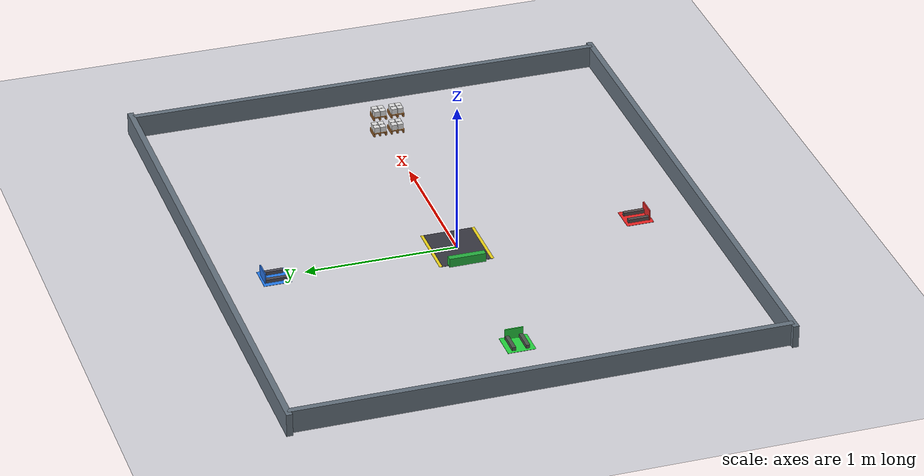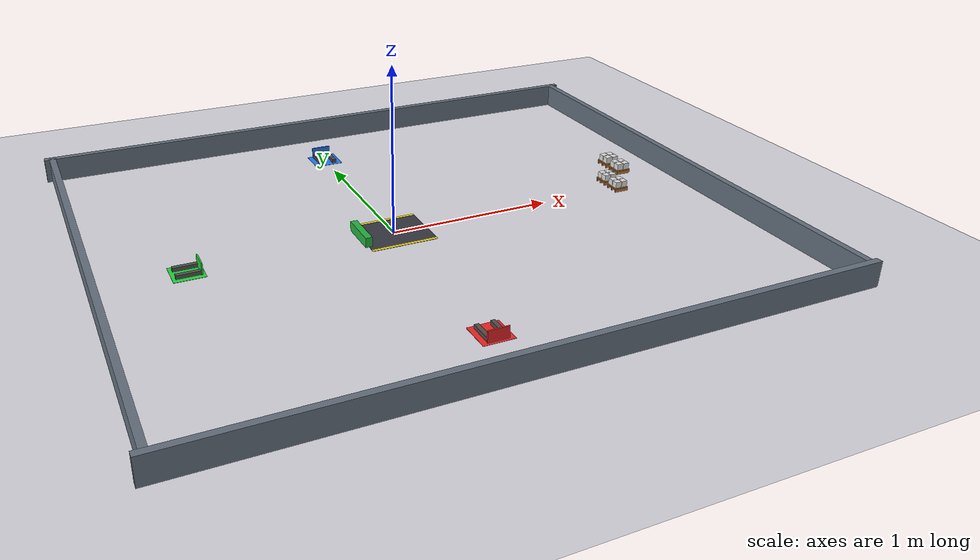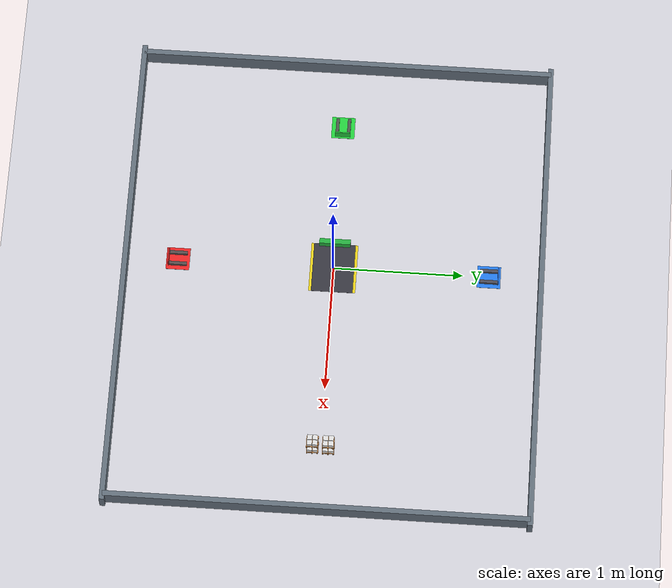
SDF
<sdf version="1.8">
 <world name="default">
  <physics name="1ms" type="ignored">
   <max_step_size>0.001</max_step_size>
   <real_time_factor>1.0</real_time_factor>
  </physics>
  <plugin filename="ignition-gazebo-physics-system" name="ignition::gazebo::systems::Physics"/>
  <plugin filename="ignition-gazebo-user-commands-system" name="ignition::gazebo::systems::UserCommands"/>
  <plugin filename="ignition-gazebo-scene-broadcaster-system" name="ignition::gazebo::systems::SceneBroadcaster"/>
  <plugin filename="ignition-gazebo-contact-system" name="ignition::gazebo::systems::Contact"/>
  <plugin filename="ignition-gazebo-sensors-system" name="ignition::gazebo::systems::Sensors">
   <render_engine>ogre2</render_engine>
  </plugin>
  <light type="directional" name="sun">
   <cast_shadows>false</cast_shadows>
   <pose>0 0 10 0 0 0</pose>
   <diffuse>0.9 0.9 0.9 1</diffuse>
   <specular>0.2 0.2 0.2 1</specular>
   <attenuation>
    <range>1000</range>
    <constant>0.9</constant>
    <linear>0.01</linear>
    <quadratic>0.001</quadratic>
   </attenuation>
   <direction>-0.5 0.1 -0.9</direction>
  </light>
  <model name="ground_plane">
   <static>true</static>
   <link name="link">
    <collision name="collision">
     <geometry><plane><normal>0 0 1</normal><size>100 100</size></plane></geometry>
     <surface><friction><ode><mu>1.0</mu><mu2>1.0</mu2></ode></friction></surface>
    </collision>
    <visual name="visual">
     <geometry><plane><normal>0 0 1</normal><size>100 100</size></plane></geometry>
     <material>
      <ambient>0.82 0.82 0.85 1</ambient>
      <diffuse>0.85 0.85 0.88 1</diffuse>
      <specular>0.5 0.5 0.5 1</specular>
     </material>
    </visual>
   </link>
  </model>
  <model name="arena_perimeter">
   <static>true</static>
   <link name="link">
    <visual name="wall_north_vis">
     <pose>0.15 1.6 0.075 0 0 0</pose>
     <geometry><box><size>3.8 0.04 0.15</size></box></geometry>
     <material><ambient>0.3 0.35 0.4 1</ambient><diffuse>0.4 0.45 0.5 1</diffuse></material>
    </visual>
    <collision name="wall_north_col">
     <pose>0.15 1.6 0.075 0 0 0</pose>
     <geometry><box><size>3.8 0.04 0.15</size></box></geometry>
    </collision>
    <visual name="wall_south_vis">
     <pose>0.15 -1.6 0.075 0 0 0</pose>
     <geometry><box><size>3.8 0.04 0.15</size></box></geometry>
     <material><ambient>0.3 0.35 0.4 1</ambient><diffuse>0.4 0.45 0.5 1</diffuse></material>
    </visual>
    <collision name="wall_south_col">
     <pose>0.15 -1.6 0.075 0 0 0</pose>
     <geometry><box><size>3.8 0.04 0.15</size></box></geometry>
    </collision>
    <visual name="wall_east_vis">
     <pose>2.0 0 0.075 0 0 0</pose>
     <geometry><box><size>0.04 3.2 0.15</size></box></geometry>
     <material><ambient>0.3 0.35 0.4 1</ambient><diffuse>0.4 0.45 0.5 1</diffuse></material>
    </visual>
    <collision name="wall_east_col">
     <pose>2.0 0 0.075 0 0 0</pose>
     <geometry><box><size>0.04 3.2 0.15</size></box></geometry>
    </collision>
    <visual name="wall_west_vis">
     <pose>-1.7 0 0.075 0 0 0</pose>
     <geometry><box><size>0.04 3.2 0.15</size></box></geometry>
     <material><ambient>0.3 0.35 0.4 1</ambient><diffuse>0.4 0.45 0.5 1</diffuse></material>
    </visual>
    <collision name="wall_west_col">
     <pose>-1.7 0 0.075 0 0 0</pose>
     <geometry><box><size>0.04 3.2 0.15</size></box></geometry>
    </collision>
   </link>
  </model>
  <include><uri>model://docking_station</uri><name>docking_home</name><pose>0.0 0.0 0.001 0 0 0</pose></include>
  <include>
   <uri>model://pallet_cpu</uri>
   <name>pallet_cpu_bottom_left</name>
   <pose>1.5 -0.060 0.0285 0 0 1.5708</pose>
  </include>
  <include>
   <uri>model://pallet_aluminum</uri>
   <name>pallet_al_bottom_right</name>
   <pose>1.5 0.060 0.0285 0 0 1.5708</pose>
  </include>
  <include>
   <uri>model://pallet_chip</uri>
   <name>pallet_chip_top_left</name>
   <pose>1.5 -0.060 0.1485 0 0 1.5708</pose>
  </include>
  <include>
   <uri>model://pallet_qr</uri>
   <name>pallet_qr_top_right</name>
   <pose>1.5 0.060 0.1485 0 0 1.5708</pose>
  </include>
  <include>
   <uri>model://dropoff_station_blue</uri>
   <name>dropoff_blue</name>
   <pose>0.0 1.2 0.0025 0 0 0.0</pose>
  </include>
  <include>
   <uri>model://dropoff_station_red</uri>
   <name>dropoff_red</name>
   <pose>0.0 -1.2 0.0025 0 0 3.14159265</pose>
  </include>
  <include>
   <uri>model://dropoff_station_green</uri>
   <name>dropoff_green</name>
   <pose>-1.2 0.0 0.0025 0 0 -1.5707963</pose>
  </include>
 </world>
</sdf>

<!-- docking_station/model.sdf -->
<sdf version="1.8">
  <model name="docking_station">
    <static>true</static>
    <link name="link">
      <!-- Main Docking Pad Surface -->
      <visual name="visual_pad">
        <pose>0 0 0.001 0 0 0</pose>
        <geometry>
          <box>
            <size>0.40 0.36 0.002</size>
          </box>
        </geometry>
        <material>
          <ambient>0.15 0.15 0.18 1.0</ambient>
          <diffuse>0.22 0.22 0.26 1.0</diffuse>
          <specular>0.3 0.3 0.3 1.0</specular>
        </material>
      </visual>

      <!-- Yellow/Amber Boundary Strip Left -->
      <visual name="visual_border_left">
        <pose>0 -0.17 0.0015 0 0 0</pose>
        <geometry>
          <box>
            <size>0.40 0.02 0.002</size>
          </box>
        </geometry>
        <material>
          <ambient>0.8 0.7 0.1 1.0</ambient>
          <diffuse>0.95 0.85 0.1 1.0</diffuse>
        </material>
      </visual>

      <!-- Yellow/Amber Boundary Strip Right -->
      <visual name="visual_border_right">
        <pose>0 0.17 0.0015 0 0 0</pose>
        <geometry>
          <box>
            <size>0.40 0.02 0.002</size>
          </box>
        </geometry>
        <material>
          <ambient>0.8 0.7 0.1 1.0</ambient>
          <diffuse>0.95 0.85 0.1 1.0</diffuse>
        </material>
      </visual>

      <!-- Rear Docking Contact Stand -->
      <visual name="visual_dock_back">
        <pose>-0.20 0 0.03 0 0 0</pose>
        <geometry>
          <box>
            <size>0.04 0.24 0.06</size>
          </box>
        </geometry>
        <material>
          <ambient>0.1 0.5 0.2 1.0</ambient>
          <diffuse>0.15 0.7 0.25 1.0</diffuse>
        </material>
      </visual>
      <collision name="collision_dock_back">
        <pose>-0.20 0 0.03 0 0 0</pose>
        <geometry>
          <box>
            <size>0.04 0.24 0.06</size>
          </box>
        </geometry>
      </collision>
    </link>
  </model>
</sdf>

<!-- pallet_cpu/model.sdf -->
<sdf version="1.8">
  <model name="pallet_cpu">
    <static>false</static>
    <link name="link">
      <inertial>
        <mass>0.25</mass>
        <inertia>
          <ixx>0.0003</ixx>
          <ixy>0</ixy>
          <ixz>0</ixz>
          <iyy>0.0003</iyy>
          <iyz>0</iyz>
          <izz>0.0004</izz>
        </inertia>
      </inertial>

      <!-- ==================== PALLET STRUCTURE (PRIMITIVE BOXES) ==================== -->
      <!-- Pallet Top Deck Visual -->
      <visual name="visual_deck">
        <pose>0 0 0.023 0 0 0</pose>
        <geometry>
          <box>
            <size>0.09 0.09 0.006</size>
          </box>
        </geometry>
        <material>
          <ambient>0.75 0.5 0.25 1.0</ambient>
          <diffuse>0.82 0.55 0.28 1.0</diffuse>
          <specular>0.1 0.1 0.1 1.0</specular>
        </material>
      </visual>

      <!-- Pallet Foot 1 (Left Runner: 10mm width) -->
      <visual name="visual_foot_1">
        <pose>-0.040 0 0.010 0 0 0</pose>
        <geometry>
          <box>
            <size>0.010 0.09 0.020</size>
          </box>
        </geometry>
        <material>
          <ambient>0.65 0.42 0.20 1.0</ambient>
          <diffuse>0.72 0.46 0.22 1.0</diffuse>
          <specular>0.1 0.1 0.1 1.0</specular>
        </material>
      </visual>

      <!-- Pallet Foot 2 (Middle Runner: 10mm width) -->
      <visual name="visual_foot_2">
        <pose>0 0 0.010 0 0 0</pose>
        <geometry>
          <box>
            <size>0.010 0.09 0.020</size>
          </box>
        </geometry>
        <material>
          <ambient>0.65 0.42 0.20 1.0</ambient>
          <diffuse>0.72 0.46 0.22 1.0</diffuse>
          <specular>0.1 0.1 0.1 1.0</specular>
        </material>
      </visual>

      <!-- Pallet Foot 3 (Right Runner: 10mm width) -->
      <visual name="visual_foot_3">
        <pose>0.040 0 0.010 0 0 0</pose>
        <geometry>
          <box>
            <size>0.010 0.09 0.020</size>
          </box>
        </geometry>
        <material>
          <ambient>0.65 0.42 0.20 1.0</ambient>
          <diffuse>0.72 0.46 0.22 1.0</diffuse>
          <specular>0.1 0.1 0.1 1.0</specular>
        </material>
      </visual>

      <!-- ==================== PALLET COLLISIONS ==================== -->
      <!-- Pallet Top Deck Collision -->
      <collision name="collision_deck">
        <pose>0 0 0.023 0 0 0</pose>
        <geometry>
          <box>
            <size>0.09 0.09 0.006</size>
          </box>
        </geometry>
        <surface>
          <friction>
            <ode>
              <mu>1.2</mu>
              <mu2>1.2</mu2>
            </ode>
          </friction>
        </surface>
      </collision>

      <!-- Pallet Foot Collisions (Left, Middle, Right Runners: 10mm) -->
      <collision name="collision_foot_1">
        <pose>-0.040 0 0.010 0 0 0</pose>
        <geometry>
          <box>
            <size>0.010 0.09 0.020</size>
          </box>
        </geometry>
      </collision>
      <collision name="collision_foot_2">
        <pose>0 0 0.010 0 0 0</pose>
        <geometry>
          <box>
            <size>0.010 0.09 0.020</size>
          </box>
        </geometry>
      </collision>
      <collision name="collision_foot_3">
        <pose>0.040 0 0.010 0 0 0</pose>
        <geometry>
          <box>
            <size>0.010 0.09 0.020</size>
          </box>
        </geometry>
      </collision>

      <!-- ==================== 4 GOODS BLOCKS VISUALS ==================== -->
      <!-- Block 1: Front-Left -->
      <visual name="visual_block_1">
        <pose>-0.021 -0.021 0.0452 0 0 0</pose>
        <geometry>
          <box>
            <size>0.038 0.038 0.038</size>
          </box>
        </geometry>
        <material>
          <ambient>0.9 0.9 0.9 1.0</ambient>
          <diffuse>0.9 0.9 0.9 1.0</diffuse>
          <pbr>
            <metal>
              <albedo_map>model://pallet_cpu/materials/textures/block_1.png</albedo_map>
              <roughness>0.3</roughness>
              <metalness>0.0</metalness>
            </metal>
          </pbr>
        </material>
      </visual>

      <!-- Block 2: Front-Right -->
      <visual name="visual_block_2">
        <pose>0.021 -0.021 0.0452 0 0 0</pose>
        <geometry>
          <box>
            <size>0.038 0.038 0.038</size>
          </box>
        </geometry>
        <material>
          <ambient>0.9 0.9 0.9 1.0</ambient>
          <diffuse>0.9 0.9 0.9 1.0</diffuse>
          <pbr>
            <metal>
              <albedo_map>model://pallet_cpu/materials/textures/block_1.png</albedo_map>
              <roughness>0.3</roughness>
              <metalness>0.0</metalness>
            </metal>
          </pbr>
        </material>
      </visual>

      <!-- Block 3: Rear-Left -->
      <visual name="visual_block_3">
        <pose>-0.021 0.021 0.0452 0 0 0</pose>
        <geometry>
          <box>
            <size>0.038 0.038 0.038</size>
          </box>
        </geometry>
        <material>
          <ambient>0.9 0.9 0.9 1.0</ambient>
          <diffuse>0.9 0.9 0.9 1.0</diffuse>
          <pbr>
            <metal>
              <albedo_map>model://pallet_cpu/materials/textures/block_1.png</albedo_map>
              <roughness>0.3</roughness>
              <metalness>0.0</metalness>
            </metal>
          </pbr>
        </material>
      </visual>

      <!-- Block 4: Rear-Right -->
      <visual name="visual_block_4">
        <pose>0.021 0.021 0.0452 0 0 0</pose>
        <geometry>
          <box>
            <size>0.038 0.038 0.038</size>
          </box>
        </geometry>
        <material>
          <ambient>0.9 0.9 0.9 1.0</ambient>
          <diffuse>0.9 0.9 0.9 1.0</diffuse>
          <pbr>
            <metal>
              <albedo_map>model://pallet_cpu/materials/textures/block_1.png</albedo_map>
              <roughness>0.3</roughness>
              <metalness>0.0</metalness>
            </metal>
          </pbr>
        </material>
      </visual>

      <!-- Consolidated Collision for All 4 Blocks (Ultra-Fast Physics Solver) -->
      <collision name="collision_blocks">
        <pose>0 0 0.0452 0 0 0</pose>
        <geometry>
          <box>
            <size>0.08 0.08 0.038</size>
          </box>
        </geometry>
      </collision>
    </link>
  </model>
</sdf>

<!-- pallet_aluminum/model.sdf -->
<sdf version="1.8">
  <model name="pallet_aluminum">
    <static>false</static>
    <link name="link">
      <inertial>
        <mass>0.25</mass>
        <inertia>
          <ixx>0.0003</ixx>
          <ixy>0</ixy>
          <ixz>0</ixz>
          <iyy>0.0003</iyy>
          <iyz>0</iyz>
          <izz>0.0004</izz>
        </inertia>
      </inertial>

      <!-- ==================== PALLET STRUCTURE (PRIMITIVE BOXES) ==================== -->
      <!-- Pallet Top Deck Visual -->
      <visual name="visual_deck">
        <pose>0 0 0.023 0 0 0</pose>
        <geometry>
          <box>
            <size>0.09 0.09 0.006</size>
          </box>
        </geometry>
        <material>
          <ambient>0.75 0.5 0.25 1.0</ambient>
          <diffuse>0.82 0.55 0.28 1.0</diffuse>
          <specular>0.1 0.1 0.1 1.0</specular>
        </material>
      </visual>

      <!-- Pallet Foot 1 (Left Runner: 10mm width) -->
      <visual name="visual_foot_1">
        <pose>-0.040 0 0.010 0 0 0</pose>
        <geometry>
          <box>
            <size>0.010 0.09 0.020</size>
          </box>
        </geometry>
        <material>
          <ambient>0.65 0.42 0.20 1.0</ambient>
          <diffuse>0.72 0.46 0.22 1.0</diffuse>
          <specular>0.1 0.1 0.1 1.0</specular>
        </material>
      </visual>

      <!-- Pallet Foot 2 (Middle Runner: 10mm width) -->
      <visual name="visual_foot_2">
        <pose>0 0 0.010 0 0 0</pose>
        <geometry>
          <box>
            <size>0.010 0.09 0.020</size>
          </box>
        </geometry>
        <material>
          <ambient>0.65 0.42 0.20 1.0</ambient>
          <diffuse>0.72 0.46 0.22 1.0</diffuse>
          <specular>0.1 0.1 0.1 1.0</specular>
        </material>
      </visual>

      <!-- Pallet Foot 3 (Right Runner: 10mm width) -->
      <visual name="visual_foot_3">
        <pose>0.040 0 0.010 0 0 0</pose>
        <geometry>
          <box>
            <size>0.010 0.09 0.020</size>
          </box>
        </geometry>
        <material>
          <ambient>0.65 0.42 0.20 1.0</ambient>
          <diffuse>0.72 0.46 0.22 1.0</diffuse>
          <specular>0.1 0.1 0.1 1.0</specular>
        </material>
      </visual>

      <!-- ==================== PALLET COLLISIONS ==================== -->
      <!-- Pallet Top Deck Collision -->
      <collision name="collision_deck">
        <pose>0 0 0.023 0 0 0</pose>
        <geometry>
          <box>
            <size>0.09 0.09 0.006</size>
          </box>
        </geometry>
        <surface>
          <friction>
            <ode>
              <mu>1.2</mu>
              <mu2>1.2</mu2>
            </ode>
          </friction>
        </surface>
      </collision>

      <!-- Pallet Foot Collisions (Left, Middle, Right Runners: 10mm) -->
      <collision name="collision_foot_1">
        <pose>-0.040 0 0.010 0 0 0</pose>
        <geometry>
          <box>
            <size>0.010 0.09 0.020</size>
          </box>
        </geometry>
      </collision>
      <collision name="collision_foot_2">
        <pose>0 0 0.010 0 0 0</pose>
        <geometry>
          <box>
            <size>0.010 0.09 0.020</size>
          </box>
        </geometry>
      </collision>
      <collision name="collision_foot_3">
        <pose>0.040 0 0.010 0 0 0</pose>
        <geometry>
          <box>
            <size>0.010 0.09 0.020</size>
          </box>
        </geometry>
      </collision>

      <!-- ==================== 4 GOODS BLOCKS VISUALS ==================== -->
      <!-- Block 1: Front-Left -->
      <visual name="visual_block_1">
        <pose>-0.021 -0.021 0.0452 0 0 0</pose>
        <geometry>
          <box>
            <size>0.038 0.038 0.038</size>
          </box>
        </geometry>
        <material>
          <ambient>0.9 0.9 0.9 1.0</ambient>
          <diffuse>0.9 0.9 0.9 1.0</diffuse>
          <pbr>
            <metal>
              <albedo_map>model://pallet_aluminum/materials/textures/block_0.png</albedo_map>
              <roughness>0.3</roughness>
              <metalness>0.0</metalness>
            </metal>
          </pbr>
        </material>
      </visual>

      <!-- Block 2: Front-Right -->
      <visual name="visual_block_2">
        <pose>0.021 -0.021 0.0452 0 0 0</pose>
        <geometry>
          <box>
            <size>0.038 0.038 0.038</size>
          </box>
        </geometry>
        <material>
          <ambient>0.9 0.9 0.9 1.0</ambient>
          <diffuse>0.9 0.9 0.9 1.0</diffuse>
          <pbr>
            <metal>
              <albedo_map>model://pallet_aluminum/materials/textures/block_0.png</albedo_map>
              <roughness>0.3</roughness>
              <metalness>0.0</metalness>
            </metal>
          </pbr>
        </material>
      </visual>

      <!-- Block 3: Rear-Left -->
      <visual name="visual_block_3">
        <pose>-0.021 0.021 0.0452 0 0 0</pose>
        <geometry>
          <box>
            <size>0.038 0.038 0.038</size>
          </box>
        </geometry>
        <material>
          <ambient>0.9 0.9 0.9 1.0</ambient>
          <diffuse>0.9 0.9 0.9 1.0</diffuse>
          <pbr>
            <metal>
              <albedo_map>model://pallet_aluminum/materials/textures/block_0.png</albedo_map>
              <roughness>0.3</roughness>
              <metalness>0.0</metalness>
            </metal>
          </pbr>
        </material>
      </visual>

      <!-- Block 4: Rear-Right -->
      <visual name="visual_block_4">
        <pose>0.021 0.021 0.0452 0 0 0</pose>
        <geometry>
          <box>
            <size>0.038 0.038 0.038</size>
          </box>
        </geometry>
        <material>
          <ambient>0.9 0.9 0.9 1.0</ambient>
          <diffuse>0.9 0.9 0.9 1.0</diffuse>
          <pbr>
            <metal>
              <albedo_map>model://pallet_aluminum/materials/textures/block_0.png</albedo_map>
              <roughness>0.3</roughness>
              <metalness>0.0</metalness>
            </metal>
          </pbr>
        </material>
      </visual>

      <!-- Consolidated Collision for All 4 Blocks (Ultra-Fast Physics Solver) -->
      <collision name="collision_blocks">
        <pose>0 0 0.0452 0 0 0</pose>
        <geometry>
          <box>
            <size>0.08 0.08 0.038</size>
          </box>
        </geometry>
      </collision>
    </link>
  </model>
</sdf>

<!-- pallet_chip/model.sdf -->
<sdf version="1.8">
  <model name="pallet_chip">
    <static>false</static>
    <link name="link">
      <inertial>
        <mass>0.25</mass>
        <inertia>
          <ixx>0.0003</ixx>
          <ixy>0</ixy>
          <ixz>0</ixz>
          <iyy>0.0003</iyy>
          <iyz>0</iyz>
          <izz>0.0004</izz>
        </inertia>
      </inertial>

      <!-- ==================== PALLET STRUCTURE (PRIMITIVE BOXES) ==================== -->
      <!-- Pallet Top Deck Visual -->
      <visual name="visual_deck">
        <pose>0 0 0.023 0 0 0</pose>
        <geometry>
          <box>
            <size>0.09 0.09 0.006</size>
          </box>
        </geometry>
        <material>
          <ambient>0.75 0.5 0.25 1.0</ambient>
          <diffuse>0.82 0.55 0.28 1.0</diffuse>
          <specular>0.1 0.1 0.1 1.0</specular>
        </material>
      </visual>

      <!-- Pallet Foot 1 (Left Runner: 10mm width) -->
      <visual name="visual_foot_1">
        <pose>-0.040 0 0.010 0 0 0</pose>
        <geometry>
          <box>
            <size>0.010 0.09 0.020</size>
          </box>
        </geometry>
        <material>
          <ambient>0.65 0.42 0.20 1.0</ambient>
          <diffuse>0.72 0.46 0.22 1.0</diffuse>
          <specular>0.1 0.1 0.1 1.0</specular>
        </material>
      </visual>

      <!-- Pallet Foot 2 (Middle Runner: 10mm width) -->
      <visual name="visual_foot_2">
        <pose>0 0 0.010 0 0 0</pose>
        <geometry>
          <box>
            <size>0.010 0.09 0.020</size>
          </box>
        </geometry>
        <material>
          <ambient>0.65 0.42 0.20 1.0</ambient>
          <diffuse>0.72 0.46 0.22 1.0</diffuse>
          <specular>0.1 0.1 0.1 1.0</specular>
        </material>
      </visual>

      <!-- Pallet Foot 3 (Right Runner: 10mm width) -->
      <visual name="visual_foot_3">
        <pose>0.040 0 0.010 0 0 0</pose>
        <geometry>
          <box>
            <size>0.010 0.09 0.020</size>
          </box>
        </geometry>
        <material>
          <ambient>0.65 0.42 0.20 1.0</ambient>
          <diffuse>0.72 0.46 0.22 1.0</diffuse>
          <specular>0.1 0.1 0.1 1.0</specular>
        </material>
      </visual>

      <!-- ==================== PALLET COLLISIONS ==================== -->
      <!-- Pallet Top Deck Collision -->
      <collision name="collision_deck">
        <pose>0 0 0.023 0 0 0</pose>
        <geometry>
          <box>
            <size>0.09 0.09 0.006</size>
          </box>
        </geometry>
        <surface>
          <friction>
            <ode>
              <mu>1.2</mu>
              <mu2>1.2</mu2>
            </ode>
          </friction>
        </surface>
      </collision>

      <!-- Pallet Foot Collisions (Left, Middle, Right Runners: 10mm) -->
      <collision name="collision_foot_1">
        <pose>-0.040 0 0.010 0 0 0</pose>
        <geometry>
          <box>
            <size>0.010 0.09 0.020</size>
          </box>
        </geometry>
      </collision>
      <collision name="collision_foot_2">
        <pose>0 0 0.010 0 0 0</pose>
        <geometry>
          <box>
            <size>0.010 0.09 0.020</size>
          </box>
        </geometry>
      </collision>
      <collision name="collision_foot_3">
        <pose>0.040 0 0.010 0 0 0</pose>
        <geometry>
          <box>
            <size>0.010 0.09 0.020</size>
          </box>
        </geometry>
      </collision>

      <!-- ==================== 4 GOODS BLOCKS VISUALS ==================== -->
      <!-- Block 1: Front-Left -->
      <visual name="visual_block_1">
        <pose>-0.021 -0.021 0.0452 0 0 0</pose>
        <geometry>
          <box>
            <size>0.038 0.038 0.038</size>
          </box>
        </geometry>
        <material>
          <ambient>0.9 0.9 0.9 1.0</ambient>
          <diffuse>0.9 0.9 0.9 1.0</diffuse>
          <pbr>
            <metal>
              <albedo_map>model://pallet_chip/materials/textures/block_3.png</albedo_map>
              <roughness>0.3</roughness>
              <metalness>0.0</metalness>
            </metal>
          </pbr>
        </material>
      </visual>

      <!-- Block 2: Front-Right -->
      <visual name="visual_block_2">
        <pose>0.021 -0.021 0.0452 0 0 0</pose>
        <geometry>
          <box>
            <size>0.038 0.038 0.038</size>
          </box>
        </geometry>
        <material>
          <ambient>0.9 0.9 0.9 1.0</ambient>
          <diffuse>0.9 0.9 0.9 1.0</diffuse>
          <pbr>
            <metal>
              <albedo_map>model://pallet_chip/materials/textures/block_3.png</albedo_map>
              <roughness>0.3</roughness>
              <metalness>0.0</metalness>
            </metal>
          </pbr>
        </material>
      </visual>

      <!-- Block 3: Rear-Left -->
      <visual name="visual_block_3">
        <pose>-0.021 0.021 0.0452 0 0 0</pose>
        <geometry>
          <box>
            <size>0.038 0.038 0.038</size>
          </box>
        </geometry>
        <material>
          <ambient>0.9 0.9 0.9 1.0</ambient>
          <diffuse>0.9 0.9 0.9 1.0</diffuse>
          <pbr>
            <metal>
              <albedo_map>model://pallet_chip/materials/textures/block_3.png</albedo_map>
              <roughness>0.3</roughness>
              <metalness>0.0</metalness>
            </metal>
          </pbr>
        </material>
      </visual>

      <!-- Block 4: Rear-Right -->
      <visual name="visual_block_4">
        <pose>0.021 0.021 0.0452 0 0 0</pose>
        <geometry>
          <box>
            <size>0.038 0.038 0.038</size>
          </box>
        </geometry>
        <material>
          <ambient>0.9 0.9 0.9 1.0</ambient>
          <diffuse>0.9 0.9 0.9 1.0</diffuse>
          <pbr>
            <metal>
              <albedo_map>model://pallet_chip/materials/textures/block_3.png</albedo_map>
              <roughness>0.3</roughness>
              <metalness>0.0</metalness>
            </metal>
          </pbr>
        </material>
      </visual>

      <!-- Consolidated Collision for All 4 Blocks (Ultra-Fast Physics Solver) -->
      <collision name="collision_blocks">
        <pose>0 0 0.0452 0 0 0</pose>
        <geometry>
          <box>
            <size>0.08 0.08 0.038</size>
          </box>
        </geometry>
      </collision>
    </link>
  </model>
</sdf>

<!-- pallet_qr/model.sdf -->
<sdf version="1.8">
  <model name="pallet_qr">
    <static>false</static>
    <link name="link">
      <inertial>
        <mass>0.25</mass>
        <inertia>
          <ixx>0.0003</ixx>
          <ixy>0</ixy>
          <ixz>0</ixz>
          <iyy>0.0003</iyy>
          <iyz>0</iyz>
          <izz>0.0004</izz>
        </inertia>
      </inertial>

      <!-- ==================== PALLET STRUCTURE (PRIMITIVE BOXES) ==================== -->
      <!-- Pallet Top Deck Visual -->
      <visual name="visual_deck">
        <pose>0 0 0.023 0 0 0</pose>
        <geometry>
          <box>
            <size>0.09 0.09 0.006</size>
          </box>
        </geometry>
        <material>
          <ambient>0.75 0.5 0.25 1.0</ambient>
          <diffuse>0.82 0.55 0.28 1.0</diffuse>
          <specular>0.1 0.1 0.1 1.0</specular>
        </material>
      </visual>

      <!-- Pallet Foot 1 (Left Runner: 10mm width) -->
      <visual name="visual_foot_1">
        <pose>-0.040 0 0.010 0 0 0</pose>
        <geometry>
          <box>
            <size>0.010 0.09 0.020</size>
          </box>
        </geometry>
        <material>
          <ambient>0.65 0.42 0.20 1.0</ambient>
          <diffuse>0.72 0.46 0.22 1.0</diffuse>
          <specular>0.1 0.1 0.1 1.0</specular>
        </material>
      </visual>

      <!-- Pallet Foot 2 (Middle Runner: 10mm width) -->
      <visual name="visual_foot_2">
        <pose>0 0 0.010 0 0 0</pose>
        <geometry>
          <box>
            <size>0.010 0.09 0.020</size>
          </box>
        </geometry>
        <material>
          <ambient>0.65 0.42 0.20 1.0</ambient>
          <diffuse>0.72 0.46 0.22 1.0</diffuse>
          <specular>0.1 0.1 0.1 1.0</specular>
        </material>
      </visual>

      <!-- Pallet Foot 3 (Right Runner: 10mm width) -->
      <visual name="visual_foot_3">
        <pose>0.040 0 0.010 0 0 0</pose>
        <geometry>
          <box>
            <size>0.010 0.09 0.020</size>
          </box>
        </geometry>
        <material>
          <ambient>0.65 0.42 0.20 1.0</ambient>
          <diffuse>0.72 0.46 0.22 1.0</diffuse>
          <specular>0.1 0.1 0.1 1.0</specular>
        </material>
      </visual>

      <!-- ==================== PALLET COLLISIONS ==================== -->
      <!-- Pallet Top Deck Collision -->
      <collision name="collision_deck">
        <pose>0 0 0.023 0 0 0</pose>
        <geometry>
          <box>
            <size>0.09 0.09 0.006</size>
          </box>
        </geometry>
        <surface>
          <friction>
            <ode>
              <mu>1.2</mu>
              <mu2>1.2</mu2>
            </ode>
          </friction>
        </surface>
      </collision>

      <!-- Pallet Foot Collisions (Left, Middle, Right Runners: 10mm) -->
      <collision name="collision_foot_1">
        <pose>-0.040 0 0.010 0 0 0</pose>
        <geometry>
          <box>
            <size>0.010 0.09 0.020</size>
          </box>
        </geometry>
      </collision>
      <collision name="collision_foot_2">
        <pose>0 0 0.010 0 0 0</pose>
        <geometry>
          <box>
            <size>0.010 0.09 0.020</size>
          </box>
        </geometry>
      </collision>
      <collision name="collision_foot_3">
        <pose>0.040 0 0.010 0 0 0</pose>
        <geometry>
          <box>
            <size>0.010 0.09 0.020</size>
          </box>
        </geometry>
      </collision>

      <!-- ==================== 4 GOODS BLOCKS VISUALS ==================== -->
      <!-- Block 1: Front-Left -->
      <visual name="visual_block_1">
        <pose>-0.021 -0.021 0.0452 0 0 0</pose>
        <geometry>
          <box>
            <size>0.038 0.038 0.038</size>
          </box>
        </geometry>
        <material>
          <ambient>0.9 0.9 0.9 1.0</ambient>
          <diffuse>0.9 0.9 0.9 1.0</diffuse>
          <pbr>
            <metal>
              <albedo_map>model://pallet_qr/materials/textures/block_2.png</albedo_map>
              <roughness>0.3</roughness>
              <metalness>0.0</metalness>
            </metal>
          </pbr>
        </material>
      </visual>

      <!-- Block 2: Front-Right -->
      <visual name="visual_block_2">
        <pose>0.021 -0.021 0.0452 0 0 0</pose>
        <geometry>
          <box>
            <size>0.038 0.038 0.038</size>
          </box>
        </geometry>
        <material>
          <ambient>0.9 0.9 0.9 1.0</ambient>
          <diffuse>0.9 0.9 0.9 1.0</diffuse>
          <pbr>
            <metal>
              <albedo_map>model://pallet_qr/materials/textures/block_2.png</albedo_map>
              <roughness>0.3</roughness>
              <metalness>0.0</metalness>
            </metal>
          </pbr>
        </material>
      </visual>

      <!-- Block 3: Rear-Left -->
      <visual name="visual_block_3">
        <pose>-0.021 0.021 0.0452 0 0 0</pose>
        <geometry>
          <box>
            <size>0.038 0.038 0.038</size>
          </box>
        </geometry>
        <material>
          <ambient>0.9 0.9 0.9 1.0</ambient>
          <diffuse>0.9 0.9 0.9 1.0</diffuse>
          <pbr>
            <metal>
              <albedo_map>model://pallet_qr/materials/textures/block_2.png</albedo_map>
              <roughness>0.3</roughness>
              <metalness>0.0</metalness>
            </metal>
          </pbr>
        </material>
      </visual>

      <!-- Block 4: Rear-Right -->
      <visual name="visual_block_4">
        <pose>0.021 0.021 0.0452 0 0 0</pose>
        <geometry>
          <box>
            <size>0.038 0.038 0.038</size>
          </box>
        </geometry>
        <material>
          <ambient>0.9 0.9 0.9 1.0</ambient>
          <diffuse>0.9 0.9 0.9 1.0</diffuse>
          <pbr>
            <metal>
              <albedo_map>model://pallet_qr/materials/textures/block_2.png</albedo_map>
              <roughness>0.3</roughness>
              <metalness>0.0</metalness>
            </metal>
          </pbr>
        </material>
      </visual>

      <!-- Consolidated Collision for All 4 Blocks (Ultra-Fast Physics Solver) -->
      <collision name="collision_blocks">
        <pose>0 0 0.0452 0 0 0</pose>
        <geometry>
          <box>
            <size>0.08 0.08 0.038</size>
          </box>
        </geometry>
      </collision>
    </link>
  </model>
</sdf>

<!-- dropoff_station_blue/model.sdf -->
<sdf version="1.8">
  <model name="dropoff_station_blue">
    <static>true</static>
    <link name="link">
      <!-- Left Support Rail (Pallet left runner rests on top) -->
      <visual name="visual_rail_left">
        <pose>-0.045 0 0.0125 0 0 0</pose>
        <geometry>
          <box>
            <size>0.025 0.14 0.025</size>
          </box>
        </geometry>
        <material>
          <ambient>0.2 0.2 0.25 1.0</ambient>
          <diffuse>0.3 0.3 0.35 1.0</diffuse>
          <specular>0.4 0.4 0.4 1.0</specular>
        </material>
      </visual>
      <collision name="collision_rail_left">
        <pose>-0.045 0 0.0125 0 0 0</pose>
        <geometry>
          <box>
            <size>0.025 0.14 0.025</size>
          </box>
        </geometry>
        <surface>
          <friction>
            <ode>
              <mu>2.0</mu>
              <mu2>2.0</mu2>
            </ode>
          </friction>
        </surface>
      </collision>

      <!-- Right Support Rail (Pallet right runner rests on top) -->
      <visual name="visual_rail_right">
        <pose>0.045 0 0.0125 0 0 0</pose>
        <geometry>
          <box>
            <size>0.025 0.14 0.025</size>
          </box>
        </geometry>
        <material>
          <ambient>0.2 0.2 0.25 1.0</ambient>
          <diffuse>0.3 0.3 0.35 1.0</diffuse>
          <specular>0.4 0.4 0.4 1.0</specular>
        </material>
      </visual>
      <collision name="collision_rail_right">
        <pose>0.045 0 0.0125 0 0 0</pose>
        <geometry>
          <box>
            <size>0.025 0.14 0.025</size>
          </box>
        </geometry>
        <surface>
          <friction>
            <ode>
              <mu>2.0</mu>
              <mu2>2.0</mu2>
            </ode>
          </friction>
        </surface>
      </collision>

      <!-- Back Stop Wall -->
      <visual name="visual_back_stop">
        <pose>0 0.072 0.035 0 0 0</pose>
        <geometry>
          <box>
            <size>0.12 0.008 0.07</size>
          </box>
        </geometry>
        <material>
          <ambient>0.1 0.3 0.7 1.0</ambient>
          <diffuse>0.15 0.45 0.9 1.0</diffuse>
          <specular>0.5 0.5 0.5 1.0</specular>
        </material>
      </visual>
      <collision name="collision_back_stop">
        <pose>0 0.072 0.035 0 0 0</pose>
        <geometry>
          <box>
            <size>0.12 0.008 0.07</size>
          </box>
        </geometry>
      </collision>

      <!-- Base Floor Marker / Color Plate -->
      <visual name="visual_floor_plate">
        <pose>0 0 0.001 0 0 0</pose>
        <geometry>
          <box>
            <size>0.18 0.18 0.002</size>
          </box>
        </geometry>
        <material>
          <ambient>0.1 0.35 0.8 1.0</ambient>
          <diffuse>0.15 0.5 0.95 1.0</diffuse>
          <specular>0.6 0.6 0.6 1.0</specular>
        </material>
      </visual>
    </link>
  </model>
</sdf>

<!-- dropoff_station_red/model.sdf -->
<sdf version="1.8">
  <model name="dropoff_station_red">
    <static>true</static>
    <link name="link">
      <!-- Left Support Rail -->
      <visual name="visual_rail_left">
        <pose>-0.045 0 0.0125 0 0 0</pose>
        <geometry>
          <box>
            <size>0.025 0.14 0.025</size>
          </box>
        </geometry>
        <material>
          <ambient>0.25 0.2 0.2 1.0</ambient>
          <diffuse>0.35 0.3 0.3 1.0</diffuse>
          <specular>0.4 0.4 0.4 1.0</specular>
        </material>
      </visual>
      <collision name="collision_rail_left">
        <pose>-0.045 0 0.0125 0 0 0</pose>
        <geometry>
          <box>
            <size>0.025 0.14 0.025</size>
          </box>
        </geometry>
        <surface>
          <friction>
            <ode>
              <mu>2.0</mu>
              <mu2>2.0</mu2>
            </ode>
          </friction>
        </surface>
      </collision>

      <!-- Right Support Rail -->
      <visual name="visual_rail_right">
        <pose>0.045 0 0.0125 0 0 0</pose>
        <geometry>
          <box>
            <size>0.025 0.14 0.025</size>
          </box>
        </geometry>
        <material>
          <ambient>0.25 0.2 0.2 1.0</ambient>
          <diffuse>0.35 0.3 0.3 1.0</diffuse>
          <specular>0.4 0.4 0.4 1.0</specular>
        </material>
      </visual>
      <collision name="collision_rail_right">
        <pose>0.045 0 0.0125 0 0 0</pose>
        <geometry>
          <box>
            <size>0.025 0.14 0.025</size>
          </box>
        </geometry>
        <surface>
          <friction>
            <ode>
              <mu>2.0</mu>
              <mu2>2.0</mu2>
            </ode>
          </friction>
        </surface>
      </collision>

      <!-- Back Stop Wall -->
      <visual name="visual_back_stop">
        <pose>0 0.072 0.035 0 0 0</pose>
        <geometry>
          <box>
            <size>0.12 0.008 0.07</size>
          </box>
        </geometry>
        <material>
          <ambient>0.7 0.1 0.1 1.0</ambient>
          <diffuse>0.9 0.15 0.15 1.0</diffuse>
          <specular>0.5 0.5 0.5 1.0</specular>
        </material>
      </visual>
      <collision name="collision_back_stop">
        <pose>0 0.072 0.035 0 0 0</pose>
        <geometry>
          <box>
            <size>0.12 0.008 0.07</size>
          </box>
        </geometry>
      </collision>

      <!-- Base Floor Marker / Color Plate -->
      <visual name="visual_floor_plate">
        <pose>0 0 0.001 0 0 0</pose>
        <geometry>
          <box>
            <size>0.18 0.18 0.002</size>
          </box>
        </geometry>
        <material>
          <ambient>0.8 0.1 0.1 1.0</ambient>
          <diffuse>0.95 0.15 0.15 1.0</diffuse>
          <specular>0.6 0.6 0.6 1.0</specular>
        </material>
      </visual>
    </link>
  </model>
</sdf>

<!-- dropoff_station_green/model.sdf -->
<sdf version="1.8">
  <model name="dropoff_station_green">
    <static>true</static>
    <link name="link">
      <!-- Left Support Rail -->
      <visual name="visual_rail_left">
        <pose>-0.045 0 0.0125 0 0 0</pose>
        <geometry>
          <box>
            <size>0.025 0.14 0.025</size>
          </box>
        </geometry>
        <material>
          <ambient>0.2 0.25 0.2 1.0</ambient>
          <diffuse>0.3 0.35 0.3 1.0</diffuse>
          <specular>0.4 0.4 0.4 1.0</specular>
        </material>
      </visual>
      <collision name="collision_rail_left">
        <pose>-0.045 0 0.0125 0 0 0</pose>
        <geometry>
          <box>
            <size>0.025 0.14 0.025</size>
          </box>
        </geometry>
        <surface>
          <friction>
            <ode>
              <mu>2.0</mu>
              <mu2>2.0</mu2>
            </ode>
          </friction>
        </surface>
      </collision>

      <!-- Right Support Rail -->
      <visual name="visual_rail_right">
        <pose>0.045 0 0.0125 0 0 0</pose>
        <geometry>
          <box>
            <size>0.025 0.14 0.025</size>
          </box>
        </geometry>
        <material>
          <ambient>0.2 0.25 0.2 1.0</ambient>
          <diffuse>0.3 0.35 0.3 1.0</diffuse>
          <specular>0.4 0.4 0.4 1.0</specular>
        </material>
      </visual>
      <collision name="collision_rail_right">
        <pose>0.045 0 0.0125 0 0 0</pose>
        <geometry>
          <box>
            <size>0.025 0.14 0.025</size>
          </box>
        </geometry>
        <surface>
          <friction>
            <ode>
              <mu>2.0</mu>
              <mu2>2.0</mu2>
            </ode>
          </friction>
        </surface>
      </collision>

      <!-- Back Stop Wall -->
      <visual name="visual_back_stop">
        <pose>0 0.072 0.035 0 0 0</pose>
        <geometry>
          <box>
            <size>0.12 0.008 0.07</size>
          </box>
        </geometry>
        <material>
          <ambient>0.1 0.6 0.2 1.0</ambient>
          <diffuse>0.15 0.8 0.25 1.0</diffuse>
          <specular>0.5 0.5 0.5 1.0</specular>
        </material>
      </visual>
      <collision name="collision_back_stop">
        <pose>0 0.072 0.035 0 0 0</pose>
        <geometry>
          <box>
            <size>0.12 0.008 0.07</size>
          </box>
        </geometry>
      </collision>

      <!-- Base Floor Marker / Color Plate -->
      <visual name="visual_floor_plate">
        <pose>0 0 0.001 0 0 0</pose>
        <geometry>
          <box>
            <size>0.18 0.18 0.002</size>
          </box>
        </geometry>
        <material>
          <ambient>0.1 0.7 0.2 1.0</ambient>
          <diffuse>0.15 0.85 0.25 1.0</diffuse>
          <specular>0.6 0.6 0.6 1.0</specular>
        </material>
      </visual>
    </link>
  </model>
</sdf>
